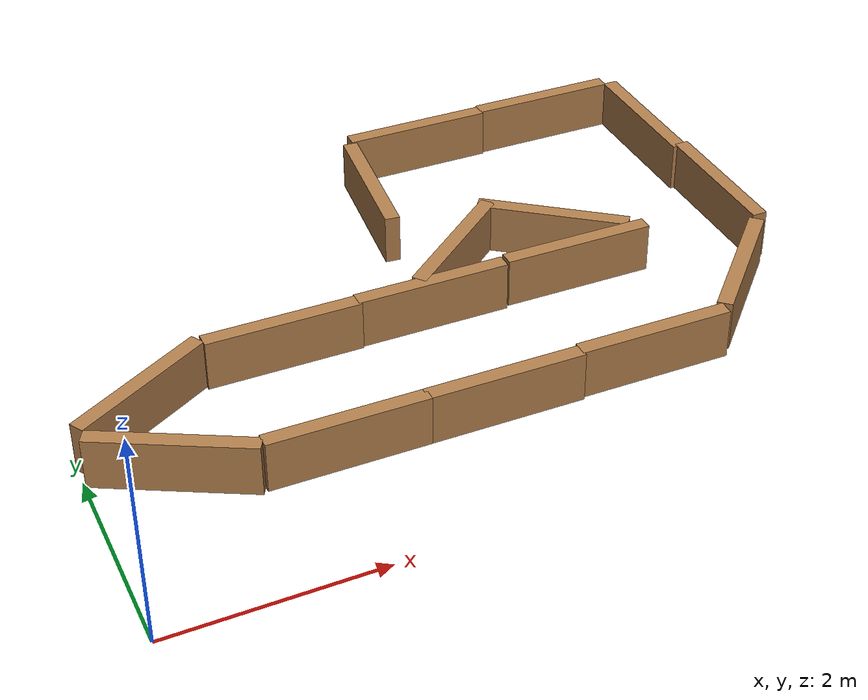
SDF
<?xml version='1.0'?>
<sdf version='1.6'>
  <model name='final_project_zone_final'>
    <link name='Wall_4'>
      <pose frame=''>0.711293 1.64851 0 0 -0 2.64859</pose>
      <inertial>
        <inertia>
          <ixx>0</ixx>
          <ixy>0</ixy>
          <ixz>0</ixz>
          <iyy>0</iyy>
          <iyz>0</iyz>
          <izz>0</izz>
        </inertia>
        <mass>0</mass>
        <pose frame=''>0 0 0 0 -0 0</pose>
      </inertial>
      <self_collide>0</self_collide>
      <kinematic>0</kinematic>
      <visual name='Wall_4_Visual'>
        <pose frame=''>0 0 0.25 0 -0 0</pose>
        <geometry>
          <box>
            <size>1.51038 0.15 0.5</size>
          </box>
        </geometry>
        <material>
          <script>
            <uri>file://media/materials/scripts/gazebo.material</uri>
            <name>Gazebo/Wood</name>
          </script>
          <ambient>1 1 1 1</ambient>
          <diffuse>1 1 1 1</diffuse>
          <specular>0.2 0.2 0.2 1</specular>
          <emissive>0 0 0 1</emissive>
          <shader type='pixel'>
            <normal_map>__default__</normal_map>
          </shader>
        </material>
        <cast_shadows>1</cast_shadows>
        <transparency>0</transparency>
      </visual>
      <collision name='Wall_4_Collision'>
        <laser_retro>0</laser_retro>
        <max_contacts>10</max_contacts>
        <pose frame=''>0 0 0.25 0 -0 0</pose>
        <geometry>
          <box>
            <size>1.51038 0.15 0.5</size>
          </box>
        </geometry>
        <surface>
          <friction>
            <ode>
              <mu>1</mu>
              <mu2>1</mu2>
              <fdir1>0 0 0</fdir1>
              <slip1>0</slip1>
              <slip2>0</slip2>
            </ode>
            <torsional>
              <coefficient>1</coefficient>
              <patch_radius>0</patch_radius>
              <surface_radius>0</surface_radius>
              <use_patch_radius>1</use_patch_radius>
              <ode>
                <slip>0</slip>
              </ode>
            </torsional>
          </friction>
          <bounce>
            <restitution_coefficient>0</restitution_coefficient>
            <threshold>1e+06</threshold>
          </bounce>
          <contact>
            <collide_without_contact>0</collide_without_contact>
            <collide_without_contact_bitmask>1</collide_without_contact_bitmask>
            <collide_bitmask>1</collide_bitmask>
            <ode>
              <soft_cfm>0</soft_cfm>
              <soft_erp>0.2</soft_erp>
              <kp>1e+13</kp>
              <kd>1</kd>
              <max_vel>0.01</max_vel>
              <min_depth>0</min_depth>
            </ode>
            <bullet>
              <split_impulse>1</split_impulse>
              <split_impulse_penetration_threshold>-0.01</split_impulse_penetration_threshold>
              <soft_cfm>0</soft_cfm>
              <soft_erp>0.2</soft_erp>
              <kp>1e+13</kp>
              <kd>1</kd>
            </bullet>
          </contact>
        </surface>
      </collision>
    </link>
    <link name='Wall_4_clone'>
      <pose frame=''>5.18012 3.43794 0 0 -0 2.48633</pose>
      <inertial>
        <inertia>
          <ixx>0</ixx>
          <ixy>0</ixy>
          <ixz>0</ixz>
          <iyy>0</iyy>
          <iyz>0</iyz>
          <izz>0</izz>
        </inertia>
        <mass>0</mass>
        <pose frame=''>0 0 0 0 -0 0</pose>
      </inertial>
      <self_collide>0</self_collide>
      <kinematic>0</kinematic>
      <visual name='Wall_4_Visual'>
        <pose frame=''>0 0 0.25 0 -0 0</pose>
        <geometry>
          <box>
            <size>1.51038 0.15 0.5</size>
          </box>
        </geometry>
        <material>
          <script>
            <uri>file://media/materials/scripts/gazebo.material</uri>
            <name>Gazebo/Wood</name>
          </script>
          <ambient>1 1 1 1</ambient>
          <diffuse>1 1 1 1</diffuse>
          <specular>0.2 0.2 0.2 1</specular>
          <emissive>0 0 0 1</emissive>
          <shader type='pixel'>
            <normal_map>__default__</normal_map>
          </shader>
        </material>
        <cast_shadows>1</cast_shadows>
        <transparency>0</transparency>
      </visual>
      <collision name='Wall_4_Collision'>
        <laser_retro>0</laser_retro>
        <max_contacts>10</max_contacts>
        <pose frame=''>0 0 0.25 0 -0 0</pose>
        <geometry>
          <box>
            <size>1.51038 0.15 0.5</size>
          </box>
        </geometry>
        <surface>
          <friction>
            <ode>
              <mu>1</mu>
              <mu2>1</mu2>
              <fdir1>0 0 0</fdir1>
              <slip1>0</slip1>
              <slip2>0</slip2>
            </ode>
            <torsional>
              <coefficient>1</coefficient>
              <patch_radius>0</patch_radius>
              <surface_radius>0</surface_radius>
              <use_patch_radius>1</use_patch_radius>
              <ode>
                <slip>0</slip>
              </ode>
            </torsional>
          </friction>
          <bounce>
            <restitution_coefficient>0</restitution_coefficient>
            <threshold>1e+06</threshold>
          </bounce>
          <contact>
            <collide_without_contact>0</collide_without_contact>
            <collide_without_contact_bitmask>1</collide_without_contact_bitmask>
            <collide_bitmask>1</collide_bitmask>
            <ode>
              <soft_cfm>0</soft_cfm>
              <soft_erp>0.2</soft_erp>
              <kp>1e+13</kp>
              <kd>1</kd>
              <max_vel>0.01</max_vel>
              <min_depth>0</min_depth>
            </ode>
            <bullet>
              <split_impulse>1</split_impulse>
              <split_impulse_penetration_threshold>-0.01</split_impulse_penetration_threshold>
              <soft_cfm>0</soft_cfm>
              <soft_erp>0.2</soft_erp>
              <kp>1e+13</kp>
              <kd>1</kd>
            </bullet>
          </contact>
        </surface>
      </collision>
    </link>
    <link name='Wall_4_clone_0'>
      <pose frame=''>0.690233 2.50756 0 0 0 -2.61959</pose>
      <inertial>
        <inertia>
          <ixx>0</ixx>
          <ixy>0</ixy>
          <ixz>0</ixz>
          <iyy>0</iyy>
          <iyz>0</iyz>
          <izz>0</izz>
        </inertia>
        <mass>0</mass>
        <pose frame=''>0 0 0 0 -0 0</pose>
      </inertial>
      <self_collide>0</self_collide>
      <kinematic>0</kinematic>
      <visual name='Wall_4_Visual'>
        <pose frame=''>0 0 0.25 0 -0 0</pose>
        <geometry>
          <box>
            <size>1.51038 0.15 0.5</size>
          </box>
        </geometry>
        <material>
          <script>
            <uri>file://media/materials/scripts/gazebo.material</uri>
            <name>Gazebo/Wood</name>
          </script>
          <ambient>1 1 1 1</ambient>
          <diffuse>1 1 1 1</diffuse>
          <specular>0.2 0.2 0.2 1</specular>
          <emissive>0 0 0 1</emissive>
          <shader type='pixel'>
            <normal_map>__default__</normal_map>
          </shader>
        </material>
        <cast_shadows>1</cast_shadows>
        <transparency>0</transparency>
      </visual>
      <collision name='Wall_4_Collision'>
        <laser_retro>0</laser_retro>
        <max_contacts>10</max_contacts>
        <pose frame=''>0 0 0.25 0 -0 0</pose>
        <geometry>
          <box>
            <size>1.51038 0.15 0.5</size>
          </box>
        </geometry>
        <surface>
          <friction>
            <ode>
              <mu>1</mu>
              <mu2>1</mu2>
              <fdir1>0 0 0</fdir1>
              <slip1>0</slip1>
              <slip2>0</slip2>
            </ode>
            <torsional>
              <coefficient>1</coefficient>
              <patch_radius>0</patch_radius>
              <surface_radius>0</surface_radius>
              <use_patch_radius>1</use_patch_radius>
              <ode>
                <slip>0</slip>
              </ode>
            </torsional>
          </friction>
          <bounce>
            <restitution_coefficient>0</restitution_coefficient>
            <threshold>1e+06</threshold>
          </bounce>
          <contact>
            <collide_without_contact>0</collide_without_contact>
            <collide_without_contact_bitmask>1</collide_without_contact_bitmask>
            <collide_bitmask>1</collide_bitmask>
            <ode>
              <soft_cfm>0</soft_cfm>
              <soft_erp>0.2</soft_erp>
              <kp>1e+13</kp>
              <kd>1</kd>
              <max_vel>0.01</max_vel>
              <min_depth>0</min_depth>
            </ode>
            <bullet>
              <split_impulse>1</split_impulse>
              <split_impulse_penetration_threshold>-0.01</split_impulse_penetration_threshold>
              <soft_cfm>0</soft_cfm>
              <soft_erp>0.2</soft_erp>
              <kp>1e+13</kp>
              <kd>1</kd>
            </bullet>
          </contact>
        </surface>
      </collision>
    </link>
    <link name='Wall_4_clone_0_clone'>
      <pose frame=''>6.41204 1.93908 0 0 0 -2.33156</pose>
      <inertial>
        <inertia>
          <ixx>0</ixx>
          <ixy>0</ixy>
          <ixz>0</ixz>
          <iyy>0</iyy>
          <iyz>0</iyz>
          <izz>0</izz>
        </inertia>
        <mass>0</mass>
        <pose frame=''>0 0 0 0 -0 0</pose>
      </inertial>
      <self_collide>0</self_collide>
      <kinematic>0</kinematic>
      <visual name='Wall_4_Visual'>
        <pose frame=''>0 0 0.25 0 -0 0</pose>
        <geometry>
          <box>
            <size>1.51038 0.15 0.5</size>
          </box>
        </geometry>
        <material>
          <script>
            <uri>file://media/materials/scripts/gazebo.material</uri>
            <name>Gazebo/Wood</name>
          </script>
          <ambient>1 1 1 1</ambient>
          <diffuse>1 1 1 1</diffuse>
          <specular>0.2 0.2 0.2 1</specular>
          <emissive>0 0 0 1</emissive>
          <shader type='pixel'>
            <normal_map>__default__</normal_map>
          </shader>
        </material>
        <cast_shadows>1</cast_shadows>
        <transparency>0</transparency>
      </visual>
      <collision name='Wall_4_Collision'>
        <laser_retro>0</laser_retro>
        <max_contacts>10</max_contacts>
        <pose frame=''>0 0 0.25 0 -0 0</pose>
        <geometry>
          <box>
            <size>1.51038 0.15 0.5</size>
          </box>
        </geometry>
        <surface>
          <friction>
            <ode>
              <mu>1</mu>
              <mu2>1</mu2>
              <fdir1>0 0 0</fdir1>
              <slip1>0</slip1>
              <slip2>0</slip2>
            </ode>
            <torsional>
              <coefficient>1</coefficient>
              <patch_radius>0</patch_radius>
              <surface_radius>0</surface_radius>
              <use_patch_radius>1</use_patch_radius>
              <ode>
                <slip>0</slip>
              </ode>
            </torsional>
          </friction>
          <bounce>
            <restitution_coefficient>0</restitution_coefficient>
            <threshold>1e+06</threshold>
          </bounce>
          <contact>
            <collide_without_contact>0</collide_without_contact>
            <collide_without_contact_bitmask>1</collide_without_contact_bitmask>
            <collide_bitmask>1</collide_bitmask>
            <ode>
              <soft_cfm>0</soft_cfm>
              <soft_erp>0.2</soft_erp>
              <kp>1e+13</kp>
              <kd>1</kd>
              <max_vel>0.01</max_vel>
              <min_depth>0</min_depth>
            </ode>
            <bullet>
              <split_impulse>1</split_impulse>
              <split_impulse_penetration_threshold>-0.01</split_impulse_penetration_threshold>
              <soft_cfm>0</soft_cfm>
              <soft_erp>0.2</soft_erp>
              <kp>1e+13</kp>
              <kd>1</kd>
            </bullet>
          </contact>
        </surface>
      </collision>
    </link>
    <link name='Wall_4_clone_0_clone_0'>
      <pose frame=''>4.09436 3.39143 0 0 0 -2.45903</pose>
      <inertial>
        <inertia>
          <ixx>0</ixx>
          <ixy>0</ixy>
          <ixz>0</ixz>
          <iyy>0</iyy>
          <iyz>0</iyz>
          <izz>0</izz>
        </inertia>
        <mass>0</mass>
        <pose frame=''>0 0 0 0 -0 0</pose>
      </inertial>
      <self_collide>0</self_collide>
      <kinematic>0</kinematic>
      <visual name='Wall_4_Visual'>
        <pose frame=''>0 0 0.25 0 -0 0</pose>
        <geometry>
          <box>
            <size>1.51038 0.15 0.5</size>
          </box>
        </geometry>
        <material>
          <script>
            <uri>file://media/materials/scripts/gazebo.material</uri>
            <name>Gazebo/Wood</name>
          </script>
          <ambient>1 1 1 1</ambient>
          <diffuse>1 1 1 1</diffuse>
          <specular>0.2 0.2 0.2 1</specular>
          <emissive>0 0 0 1</emissive>
          <shader type='pixel'>
            <normal_map>__default__</normal_map>
          </shader>
        </material>
        <cast_shadows>1</cast_shadows>
        <transparency>0</transparency>
      </visual>
      <collision name='Wall_4_Collision'>
        <laser_retro>0</laser_retro>
        <max_contacts>10</max_contacts>
        <pose frame=''>0 0 0.25 0 -0 0</pose>
        <geometry>
          <box>
            <size>1.51038 0.15 0.5</size>
          </box>
        </geometry>
        <surface>
          <friction>
            <ode>
              <mu>1</mu>
              <mu2>1</mu2>
              <fdir1>0 0 0</fdir1>
              <slip1>0</slip1>
              <slip2>0</slip2>
            </ode>
            <torsional>
              <coefficient>1</coefficient>
              <patch_radius>0</patch_radius>
              <surface_radius>0</surface_radius>
              <use_patch_radius>1</use_patch_radius>
              <ode>
                <slip>0</slip>
              </ode>
            </torsional>
          </friction>
          <bounce>
            <restitution_coefficient>0</restitution_coefficient>
            <threshold>1e+06</threshold>
          </bounce>
          <contact>
            <collide_without_contact>0</collide_without_contact>
            <collide_without_contact_bitmask>1</collide_without_contact_bitmask>
            <collide_bitmask>1</collide_bitmask>
            <ode>
              <soft_cfm>0</soft_cfm>
              <soft_erp>0.2</soft_erp>
              <kp>1e+13</kp>
              <kd>1</kd>
              <max_vel>0.01</max_vel>
              <min_depth>0</min_depth>
            </ode>
            <bullet>
              <split_impulse>1</split_impulse>
              <split_impulse_penetration_threshold>-0.01</split_impulse_penetration_threshold>
              <soft_cfm>0</soft_cfm>
              <soft_erp>0.2</soft_erp>
              <kp>1e+13</kp>
              <kd>1</kd>
            </bullet>
          </contact>
        </surface>
      </collision>
    </link>
    <link name='Wall_4_clone_1'>
      <pose frame=''>2.14061 1.32017 0 0 0 -0.004193</pose>
      <inertial>
        <inertia>
          <ixx>0</ixx>
          <ixy>0</ixy>
          <ixz>0</ixz>
          <iyy>0</iyy>
          <iyz>0</iyz>
          <izz>0</izz>
        </inertia>
        <mass>0</mass>
        <pose frame=''>0 0 0 0 -0 0</pose>
      </inertial>
      <self_collide>0</self_collide>
      <kinematic>0</kinematic>
      <visual name='Wall_4_Visual'>
        <pose frame=''>0 0 0.25 0 -0 0</pose>
        <geometry>
          <box>
            <size>1.51038 0.15 0.5</size>
          </box>
        </geometry>
        <material>
          <script>
            <uri>file://media/materials/scripts/gazebo.material</uri>
            <name>Gazebo/Wood</name>
          </script>
          <ambient>1 1 1 1</ambient>
          <diffuse>1 1 1 1</diffuse>
          <specular>0.2 0.2 0.2 1</specular>
          <emissive>0 0 0 1</emissive>
          <shader type='pixel'>
            <normal_map>__default__</normal_map>
          </shader>
        </material>
        <cast_shadows>1</cast_shadows>
        <transparency>0</transparency>
      </visual>
      <collision name='Wall_4_Collision'>
        <laser_retro>0</laser_retro>
        <max_contacts>10</max_contacts>
        <pose frame=''>0 0 0.25 0 -0 0</pose>
        <geometry>
          <box>
            <size>1.51038 0.15 0.5</size>
          </box>
        </geometry>
        <surface>
          <friction>
            <ode>
              <mu>1</mu>
              <mu2>1</mu2>
              <fdir1>0 0 0</fdir1>
              <slip1>0</slip1>
              <slip2>0</slip2>
            </ode>
            <torsional>
              <coefficient>1</coefficient>
              <patch_radius>0</patch_radius>
              <surface_radius>0</surface_radius>
              <use_patch_radius>1</use_patch_radius>
              <ode>
                <slip>0</slip>
              </ode>
            </torsional>
          </friction>
          <bounce>
            <restitution_coefficient>0</restitution_coefficient>
            <threshold>1e+06</threshold>
          </bounce>
          <contact>
            <collide_without_contact>0</collide_without_contact>
            <collide_without_contact_bitmask>1</collide_without_contact_bitmask>
            <collide_bitmask>1</collide_bitmask>
            <ode>
              <soft_cfm>0</soft_cfm>
              <soft_erp>0.2</soft_erp>
              <kp>1e+13</kp>
              <kd>1</kd>
              <max_vel>0.01</max_vel>
              <min_depth>0</min_depth>
            </ode>
            <bullet>
              <split_impulse>1</split_impulse>
              <split_impulse_penetration_threshold>-0.01</split_impulse_penetration_threshold>
              <soft_cfm>0</soft_cfm>
              <soft_erp>0.2</soft_erp>
              <kp>1e+13</kp>
              <kd>1</kd>
            </bullet>
          </contact>
        </surface>
      </collision>
    </link>
    <link name='Wall_4_clone_1_clone'>
      <pose frame=''>5.11683 1.33715 0 0 0 -0.004193</pose>
      <inertial>
        <inertia>
          <ixx>0</ixx>
          <ixy>0</ixy>
          <ixz>0</ixz>
          <iyy>0</iyy>
          <iyz>0</iyz>
          <izz>0</izz>
        </inertia>
        <mass>0</mass>
        <pose frame=''>0 0 0 0 -0 0</pose>
      </inertial>
      <self_collide>0</self_collide>
      <kinematic>0</kinematic>
      <visual name='Wall_4_Visual'>
        <pose frame=''>0 0 0.25 0 -0 0</pose>
        <geometry>
          <box>
            <size>1.51038 0.15 0.5</size>
          </box>
        </geometry>
        <material>
          <script>
            <uri>file://media/materials/scripts/gazebo.material</uri>
            <name>Gazebo/Wood</name>
          </script>
          <ambient>1 1 1 1</ambient>
          <diffuse>1 1 1 1</diffuse>
          <specular>0.2 0.2 0.2 1</specular>
          <emissive>0 0 0 1</emissive>
          <shader type='pixel'>
            <normal_map>__default__</normal_map>
          </shader>
        </material>
        <cast_shadows>1</cast_shadows>
        <transparency>0</transparency>
      </visual>
      <collision name='Wall_4_Collision'>
        <laser_retro>0</laser_retro>
        <max_contacts>10</max_contacts>
        <pose frame=''>0 0 0.25 0 -0 0</pose>
        <geometry>
          <box>
            <size>1.51038 0.15 0.5</size>
          </box>
        </geometry>
        <surface>
          <friction>
            <ode>
              <mu>1</mu>
              <mu2>1</mu2>
              <fdir1>0 0 0</fdir1>
              <slip1>0</slip1>
              <slip2>0</slip2>
            </ode>
            <torsional>
              <coefficient>1</coefficient>
              <patch_radius>0</patch_radius>
              <surface_radius>0</surface_radius>
              <use_patch_radius>1</use_patch_radius>
              <ode>
                <slip>0</slip>
              </ode>
            </torsional>
          </friction>
          <bounce>
            <restitution_coefficient>0</restitution_coefficient>
            <threshold>1e+06</threshold>
          </bounce>
          <contact>
            <collide_without_contact>0</collide_without_contact>
            <collide_without_contact_bitmask>1</collide_without_contact_bitmask>
            <collide_bitmask>1</collide_bitmask>
            <ode>
              <soft_cfm>0</soft_cfm>
              <soft_erp>0.2</soft_erp>
              <kp>1e+13</kp>
              <kd>1</kd>
              <max_vel>0.01</max_vel>
              <min_depth>0</min_depth>
            </ode>
            <bullet>
              <split_impulse>1</split_impulse>
              <split_impulse_penetration_threshold>-0.01</split_impulse_penetration_threshold>
              <soft_cfm>0</soft_cfm>
              <soft_erp>0.2</soft_erp>
              <kp>1e+13</kp>
              <kd>1</kd>
            </bullet>
          </contact>
        </surface>
      </collision>
    </link>
    <link name='Wall_4_clone_1_clone_0'>
      <pose frame=''>3.62102 1.31595 0 0 0 -0.004193</pose>
      <inertial>
        <inertia>
          <ixx>0</ixx>
          <ixy>0</ixy>
          <ixz>0</ixz>
          <iyy>0</iyy>
          <iyz>0</iyz>
          <izz>0</izz>
        </inertia>
        <mass>0</mass>
        <pose frame=''>0 0 0 0 -0 0</pose>
      </inertial>
      <self_collide>0</self_collide>
      <kinematic>0</kinematic>
      <visual name='Wall_4_Visual'>
        <pose frame=''>0 0 0.25 0 -0 0</pose>
        <geometry>
          <box>
            <size>1.51038 0.15 0.5</size>
          </box>
        </geometry>
        <material>
          <script>
            <uri>file://media/materials/scripts/gazebo.material</uri>
            <name>Gazebo/Wood</name>
          </script>
          <ambient>1 1 1 1</ambient>
          <diffuse>1 1 1 1</diffuse>
          <specular>0.2 0.2 0.2 1</specular>
          <emissive>0 0 0 1</emissive>
          <shader type='pixel'>
            <normal_map>__default__</normal_map>
          </shader>
        </material>
        <cast_shadows>1</cast_shadows>
        <transparency>0</transparency>
      </visual>
      <collision name='Wall_4_Collision'>
        <laser_retro>0</laser_retro>
        <max_contacts>10</max_contacts>
        <pose frame=''>0 0 0.25 0 -0 0</pose>
        <geometry>
          <box>
            <size>1.51038 0.15 0.5</size>
          </box>
        </geometry>
        <surface>
          <friction>
            <ode>
              <mu>1</mu>
              <mu2>1</mu2>
              <fdir1>0 0 0</fdir1>
              <slip1>0</slip1>
              <slip2>0</slip2>
            </ode>
            <torsional>
              <coefficient>1</coefficient>
              <patch_radius>0</patch_radius>
              <surface_radius>0</surface_radius>
              <use_patch_radius>1</use_patch_radius>
              <ode>
                <slip>0</slip>
              </ode>
            </torsional>
          </friction>
          <bounce>
            <restitution_coefficient>0</restitution_coefficient>
            <threshold>1e+06</threshold>
          </bounce>
          <contact>
            <collide_without_contact>0</collide_without_contact>
            <collide_without_contact_bitmask>1</collide_without_contact_bitmask>
            <collide_bitmask>1</collide_bitmask>
            <ode>
              <soft_cfm>0</soft_cfm>
              <soft_erp>0.2</soft_erp>
              <kp>1e+13</kp>
              <kd>1</kd>
              <max_vel>0.01</max_vel>
              <min_depth>0</min_depth>
            </ode>
            <bullet>
              <split_impulse>1</split_impulse>
              <split_impulse_penetration_threshold>-0.01</split_impulse_penetration_threshold>
              <soft_cfm>0</soft_cfm>
              <soft_erp>0.2</soft_erp>
              <kp>1e+13</kp>
              <kd>1</kd>
            </bullet>
          </contact>
        </surface>
      </collision>
    </link>
    <link name='Wall_4_clone_1_clone_1'>
      <pose frame=''>2.12657 2.84824 0 0 0 -0.004193</pose>
      <inertial>
        <inertia>
          <ixx>0</ixx>
          <ixy>0</ixy>
          <ixz>0</ixz>
          <iyy>0</iyy>
          <iyz>0</iyz>
          <izz>0</izz>
        </inertia>
        <mass>0</mass>
        <pose frame=''>0 0 0 0 -0 0</pose>
      </inertial>
      <self_collide>0</self_collide>
      <kinematic>0</kinematic>
      <visual name='Wall_4_Visual'>
        <pose frame=''>0 0 0.25 0 -0 0</pose>
        <geometry>
          <box>
            <size>1.51038 0.15 0.5</size>
          </box>
        </geometry>
        <material>
          <script>
            <uri>file://media/materials/scripts/gazebo.material</uri>
            <name>Gazebo/Wood</name>
          </script>
          <ambient>1 1 1 1</ambient>
          <diffuse>1 1 1 1</diffuse>
          <specular>0.2 0.2 0.2 1</specular>
          <emissive>0 0 0 1</emissive>
          <shader type='pixel'>
            <normal_map>__default__</normal_map>
          </shader>
        </material>
        <cast_shadows>1</cast_shadows>
        <transparency>0</transparency>
      </visual>
      <collision name='Wall_4_Collision'>
        <laser_retro>0</laser_retro>
        <max_contacts>10</max_contacts>
        <pose frame=''>0 0 0.25 0 -0 0</pose>
        <geometry>
          <box>
            <size>1.51038 0.15 0.5</size>
          </box>
        </geometry>
        <surface>
          <friction>
            <ode>
              <mu>1</mu>
              <mu2>1</mu2>
              <fdir1>0 0 0</fdir1>
              <slip1>0</slip1>
              <slip2>0</slip2>
            </ode>
            <torsional>
              <coefficient>1</coefficient>
              <patch_radius>0</patch_radius>
              <surface_radius>0</surface_radius>
              <use_patch_radius>1</use_patch_radius>
              <ode>
                <slip>0</slip>
              </ode>
            </torsional>
          </friction>
          <bounce>
            <restitution_coefficient>0</restitution_coefficient>
            <threshold>1e+06</threshold>
          </bounce>
          <contact>
            <collide_without_contact>0</collide_without_contact>
            <collide_without_contact_bitmask>1</collide_without_contact_bitmask>
            <collide_bitmask>1</collide_bitmask>
            <ode>
              <soft_cfm>0</soft_cfm>
              <soft_erp>0.2</soft_erp>
              <kp>1e+13</kp>
              <kd>1</kd>
              <max_vel>0.01</max_vel>
              <min_depth>0</min_depth>
            </ode>
            <bullet>
              <split_impulse>1</split_impulse>
              <split_impulse_penetration_threshold>-0.01</split_impulse_penetration_threshold>
              <soft_cfm>0</soft_cfm>
              <soft_erp>0.2</soft_erp>
              <kp>1e+13</kp>
              <kd>1</kd>
            </bullet>
          </contact>
        </surface>
      </collision>
    </link>
    <link name='Wall_4_clone_1_clone_2'>
      <pose frame=''>5.15165 2.88569 0 0 0 -0.004193</pose>
      <inertial>
        <inertia>
          <ixx>0</ixx>
          <ixy>0</ixy>
          <ixz>0</ixz>
          <iyy>0</iyy>
          <iyz>0</iyz>
          <izz>0</izz>
        </inertia>
        <mass>0</mass>
        <pose frame=''>0 0 0 0 -0 0</pose>
      </inertial>
      <self_collide>0</self_collide>
      <kinematic>0</kinematic>
      <visual name='Wall_4_Visual'>
        <pose frame=''>0 0 0.25 0 -0 0</pose>
        <geometry>
          <box>
            <size>1.51038 0.15 0.5</size>
          </box>
        </geometry>
        <material>
          <script>
            <uri>file://media/materials/scripts/gazebo.material</uri>
            <name>Gazebo/Wood</name>
          </script>
          <ambient>1 1 1 1</ambient>
          <diffuse>1 1 1 1</diffuse>
          <specular>0.2 0.2 0.2 1</specular>
          <emissive>0 0 0 1</emissive>
          <shader type='pixel'>
            <normal_map>__default__</normal_map>
          </shader>
        </material>
        <cast_shadows>1</cast_shadows>
        <transparency>0</transparency>
      </visual>
      <collision name='Wall_4_Collision'>
        <laser_retro>0</laser_retro>
        <max_contacts>10</max_contacts>
        <pose frame=''>0 0 0.25 0 -0 0</pose>
        <geometry>
          <box>
            <size>1.51038 0.15 0.5</size>
          </box>
        </geometry>
        <surface>
          <friction>
            <ode>
              <mu>1</mu>
              <mu2>1</mu2>
              <fdir1>0 0 0</fdir1>
              <slip1>0</slip1>
              <slip2>0</slip2>
            </ode>
            <torsional>
              <coefficient>1</coefficient>
              <patch_radius>0</patch_radius>
              <surface_radius>0</surface_radius>
              <use_patch_radius>1</use_patch_radius>
              <ode>
                <slip>0</slip>
              </ode>
            </torsional>
          </friction>
          <bounce>
            <restitution_coefficient>0</restitution_coefficient>
            <threshold>1e+06</threshold>
          </bounce>
          <contact>
            <collide_without_contact>0</collide_without_contact>
            <collide_without_contact_bitmask>1</collide_without_contact_bitmask>
            <collide_bitmask>1</collide_bitmask>
            <ode>
              <soft_cfm>0</soft_cfm>
              <soft_erp>0.2</soft_erp>
              <kp>1e+13</kp>
              <kd>1</kd>
              <max_vel>0.01</max_vel>
              <min_depth>0</min_depth>
            </ode>
            <bullet>
              <split_impulse>1</split_impulse>
              <split_impulse_penetration_threshold>-0.01</split_impulse_penetration_threshold>
              <soft_cfm>0</soft_cfm>
              <soft_erp>0.2</soft_erp>
              <kp>1e+13</kp>
              <kd>1</kd>
            </bullet>
          </contact>
        </surface>
      </collision>
    </link>
    <link name='Wall_4_clone_1_clone_3'>
      <pose frame=''>3.61124 2.86106 0 0 0 -0.004193</pose>
      <inertial>
        <inertia>
          <ixx>0</ixx>
          <ixy>0</ixy>
          <ixz>0</ixz>
          <iyy>0</iyy>
          <iyz>0</iyz>
          <izz>0</izz>
        </inertia>
        <mass>0</mass>
        <pose frame=''>0 0 0 0 -0 0</pose>
      </inertial>
      <self_collide>0</self_collide>
      <kinematic>0</kinematic>
      <visual name='Wall_4_Visual'>
        <pose frame=''>0 0 0.25 0 -0 0</pose>
        <geometry>
          <box>
            <size>1.51038 0.15 0.5</size>
          </box>
        </geometry>
        <material>
          <script>
            <uri>file://media/materials/scripts/gazebo.material</uri>
            <name>Gazebo/Wood</name>
          </script>
          <ambient>1 1 1 1</ambient>
          <diffuse>1 1 1 1</diffuse>
          <specular>0.2 0.2 0.2 1</specular>
          <emissive>0 0 0 1</emissive>
          <shader type='pixel'>
            <normal_map>__default__</normal_map>
          </shader>
        </material>
        <cast_shadows>1</cast_shadows>
        <transparency>0</transparency>
      </visual>
      <collision name='Wall_4_Collision'>
        <laser_retro>0</laser_retro>
        <max_contacts>10</max_contacts>
        <pose frame=''>0 0 0.25 0 -0 0</pose>
        <geometry>
          <box>
            <size>1.51038 0.15 0.5</size>
          </box>
        </geometry>
        <surface>
          <friction>
            <ode>
              <mu>1</mu>
              <mu2>1</mu2>
              <fdir1>0 0 0</fdir1>
              <slip1>0</slip1>
              <slip2>0</slip2>
            </ode>
            <torsional>
              <coefficient>1</coefficient>
              <patch_radius>0</patch_radius>
              <surface_radius>0</surface_radius>
              <use_patch_radius>1</use_patch_radius>
              <ode>
                <slip>0</slip>
              </ode>
            </torsional>
          </friction>
          <bounce>
            <restitution_coefficient>0</restitution_coefficient>
            <threshold>1e+06</threshold>
          </bounce>
          <contact>
            <collide_without_contact>0</collide_without_contact>
            <collide_without_contact_bitmask>1</collide_without_contact_bitmask>
            <collide_bitmask>1</collide_bitmask>
            <ode>
              <soft_cfm>0</soft_cfm>
              <soft_erp>0.2</soft_erp>
              <kp>1e+13</kp>
              <kd>1</kd>
              <max_vel>0.01</max_vel>
              <min_depth>0</min_depth>
            </ode>
            <bullet>
              <split_impulse>1</split_impulse>
              <split_impulse_penetration_threshold>-0.01</split_impulse_penetration_threshold>
              <soft_cfm>0</soft_cfm>
              <soft_erp>0.2</soft_erp>
              <kp>1e+13</kp>
              <kd>1</kd>
            </bullet>
          </contact>
        </surface>
      </collision>
    </link>
    <link name='Wall_4_clone_1_clone_3_clone'>
      <pose frame=''>6.14633 5.58513 0 0 0 -0.004193</pose>
      <inertial>
        <inertia>
          <ixx>0</ixx>
          <ixy>0</ixy>
          <ixz>0</ixz>
          <iyy>0</iyy>
          <iyz>0</iyz>
          <izz>0</izz>
        </inertia>
        <mass>0</mass>
        <pose frame=''>0 0 0 0 -0 0</pose>
      </inertial>
      <self_collide>0</self_collide>
      <kinematic>0</kinematic>
      <visual name='Wall_4_Visual'>
        <pose frame=''>0 0 0.25 0 -0 0</pose>
        <geometry>
          <box>
            <size>1.51038 0.15 0.5</size>
          </box>
        </geometry>
        <material>
          <script>
            <uri>file://media/materials/scripts/gazebo.material</uri>
            <name>Gazebo/Wood</name>
          </script>
          <ambient>1 1 1 1</ambient>
          <diffuse>1 1 1 1</diffuse>
          <specular>0.2 0.2 0.2 1</specular>
          <emissive>0 0 0 1</emissive>
          <shader type='pixel'>
            <normal_map>__default__</normal_map>
          </shader>
        </material>
        <cast_shadows>1</cast_shadows>
        <transparency>0</transparency>
      </visual>
      <collision name='Wall_4_Collision'>
        <laser_retro>0</laser_retro>
        <max_contacts>10</max_contacts>
        <pose frame=''>0 0 0.25 0 -0 0</pose>
        <geometry>
          <box>
            <size>1.51038 0.15 0.5</size>
          </box>
        </geometry>
        <surface>
          <friction>
            <ode>
              <mu>1</mu>
              <mu2>1</mu2>
              <fdir1>0 0 0</fdir1>
              <slip1>0</slip1>
              <slip2>0</slip2>
            </ode>
            <torsional>
              <coefficient>1</coefficient>
              <patch_radius>0</patch_radius>
              <surface_radius>0</surface_radius>
              <use_patch_radius>1</use_patch_radius>
              <ode>
                <slip>0</slip>
              </ode>
            </torsional>
          </friction>
          <bounce>
            <restitution_coefficient>0</restitution_coefficient>
            <threshold>1e+06</threshold>
          </bounce>
          <contact>
            <collide_without_contact>0</collide_without_contact>
            <collide_without_contact_bitmask>1</collide_without_contact_bitmask>
            <collide_bitmask>1</collide_bitmask>
            <ode>
              <soft_cfm>0</soft_cfm>
              <soft_erp>0.2</soft_erp>
              <kp>1e+13</kp>
              <kd>1</kd>
              <max_vel>0.01</max_vel>
              <min_depth>0</min_depth>
            </ode>
            <bullet>
              <split_impulse>1</split_impulse>
              <split_impulse_penetration_threshold>-0.01</split_impulse_penetration_threshold>
              <soft_cfm>0</soft_cfm>
              <soft_erp>0.2</soft_erp>
              <kp>1e+13</kp>
              <kd>1</kd>
            </bullet>
          </contact>
        </surface>
      </collision>
    </link>
    <link name='Wall_4_clone_1_clone_3_clone_0'>
      <pose frame=''>4.64508 5.5676 0 0 0 -0.004193</pose>
      <inertial>
        <inertia>
          <ixx>0</ixx>
          <ixy>0</ixy>
          <ixz>0</ixz>
          <iyy>0</iyy>
          <iyz>0</iyz>
          <izz>0</izz>
        </inertia>
        <mass>0</mass>
        <pose frame=''>0 0 0 0 -0 0</pose>
      </inertial>
      <self_collide>0</self_collide>
      <kinematic>0</kinematic>
      <visual name='Wall_4_Visual'>
        <pose frame=''>0 0 0.25 0 -0 0</pose>
        <geometry>
          <box>
            <size>1.51038 0.15 0.5</size>
          </box>
        </geometry>
        <material>
          <script>
            <uri>file://media/materials/scripts/gazebo.material</uri>
            <name>Gazebo/Wood</name>
          </script>
          <ambient>1 1 1 1</ambient>
          <diffuse>1 1 1 1</diffuse>
          <specular>0.2 0.2 0.2 1</specular>
          <emissive>0 0 0 1</emissive>
          <shader type='pixel'>
            <normal_map>__default__</normal_map>
          </shader>
        </material>
        <cast_shadows>1</cast_shadows>
        <transparency>0</transparency>
      </visual>
      <collision name='Wall_4_Collision'>
        <laser_retro>0</laser_retro>
        <max_contacts>10</max_contacts>
        <pose frame=''>0 0 0.25 0 -0 0</pose>
        <geometry>
          <box>
            <size>1.51038 0.15 0.5</size>
          </box>
        </geometry>
        <surface>
          <friction>
            <ode>
              <mu>1</mu>
              <mu2>1</mu2>
              <fdir1>0 0 0</fdir1>
              <slip1>0</slip1>
              <slip2>0</slip2>
            </ode>
            <torsional>
              <coefficient>1</coefficient>
              <patch_radius>0</patch_radius>
              <surface_radius>0</surface_radius>
              <use_patch_radius>1</use_patch_radius>
              <ode>
                <slip>0</slip>
              </ode>
            </torsional>
          </friction>
          <bounce>
            <restitution_coefficient>0</restitution_coefficient>
            <threshold>1e+06</threshold>
          </bounce>
          <contact>
            <collide_without_contact>0</collide_without_contact>
            <collide_without_contact_bitmask>1</collide_without_contact_bitmask>
            <collide_bitmask>1</collide_bitmask>
            <ode>
              <soft_cfm>0</soft_cfm>
              <soft_erp>0.2</soft_erp>
              <kp>1e+13</kp>
              <kd>1</kd>
              <max_vel>0.01</max_vel>
              <min_depth>0</min_depth>
            </ode>
            <bullet>
              <split_impulse>1</split_impulse>
              <split_impulse_penetration_threshold>-0.01</split_impulse_penetration_threshold>
              <soft_cfm>0</soft_cfm>
              <soft_erp>0.2</soft_erp>
              <kp>1e+13</kp>
              <kd>1</kd>
            </bullet>
          </contact>
        </surface>
      </collision>
    </link>
    <link name='Wall_4_clone_2_clone'>
      <pose frame=''>6.96474 4.76618 0 0 -0 1.5708</pose>
      <inertial>
        <inertia>
          <ixx>0</ixx>
          <ixy>0</ixy>
          <ixz>0</ixz>
          <iyy>0</iyy>
          <iyz>0</iyz>
          <izz>0</izz>
        </inertia>
        <mass>0</mass>
        <pose frame=''>0 0 0 0 -0 0</pose>
      </inertial>
      <self_collide>0</self_collide>
      <kinematic>0</kinematic>
      <visual name='Wall_4_Visual'>
        <pose frame=''>0 0 0.25 0 -0 0</pose>
        <geometry>
          <box>
            <size>1.51038 0.15 0.5</size>
          </box>
        </geometry>
        <material>
          <script>
            <uri>file://media/materials/scripts/gazebo.material</uri>
            <name>Gazebo/Wood</name>
          </script>
          <ambient>1 1 1 1</ambient>
          <diffuse>1 1 1 1</diffuse>
          <specular>0.2 0.2 0.2 1</specular>
          <emissive>0 0 0 1</emissive>
          <shader type='pixel'>
            <normal_map>__default__</normal_map>
          </shader>
        </material>
        <cast_shadows>1</cast_shadows>
        <transparency>0</transparency>
      </visual>
      <collision name='Wall_4_Collision'>
        <laser_retro>0</laser_retro>
        <max_contacts>10</max_contacts>
        <pose frame=''>0 0 0.25 0 -0 0</pose>
        <geometry>
          <box>
            <size>1.51038 0.15 0.5</size>
          </box>
        </geometry>
        <surface>
          <friction>
            <ode>
              <mu>1</mu>
              <mu2>1</mu2>
              <fdir1>0 0 0</fdir1>
              <slip1>0</slip1>
              <slip2>0</slip2>
            </ode>
            <torsional>
              <coefficient>1</coefficient>
              <patch_radius>0</patch_radius>
              <surface_radius>0</surface_radius>
              <use_patch_radius>1</use_patch_radius>
              <ode>
                <slip>0</slip>
              </ode>
            </torsional>
          </friction>
          <bounce>
            <restitution_coefficient>0</restitution_coefficient>
            <threshold>1e+06</threshold>
          </bounce>
          <contact>
            <collide_without_contact>0</collide_without_contact>
            <collide_without_contact_bitmask>1</collide_without_contact_bitmask>
            <collide_bitmask>1</collide_bitmask>
            <ode>
              <soft_cfm>0</soft_cfm>
              <soft_erp>0.2</soft_erp>
              <kp>1e+13</kp>
              <kd>1</kd>
              <max_vel>0.01</max_vel>
              <min_depth>0</min_depth>
            </ode>
            <bullet>
              <split_impulse>1</split_impulse>
              <split_impulse_penetration_threshold>-0.01</split_impulse_penetration_threshold>
              <soft_cfm>0</soft_cfm>
              <soft_erp>0.2</soft_erp>
              <kp>1e+13</kp>
              <kd>1</kd>
            </bullet>
          </contact>
        </surface>
      </collision>
    </link>
    <link name='Wall_4_clone_2_clone_0'>
      <pose frame=''>7.00784 3.30235 0 0 -0 1.5708</pose>
      <inertial>
        <inertia>
          <ixx>0</ixx>
          <ixy>0</ixy>
          <ixz>0</ixz>
          <iyy>0</iyy>
          <iyz>0</iyz>
          <izz>0</izz>
        </inertia>
        <mass>0</mass>
        <pose frame=''>0 0 0 0 -0 0</pose>
      </inertial>
      <self_collide>0</self_collide>
      <kinematic>0</kinematic>
      <visual name='Wall_4_Visual'>
        <pose frame=''>0 0 0.25 0 -0 0</pose>
        <geometry>
          <box>
            <size>1.51038 0.15 0.5</size>
          </box>
        </geometry>
        <material>
          <script>
            <uri>file://media/materials/scripts/gazebo.material</uri>
            <name>Gazebo/Wood</name>
          </script>
          <ambient>1 1 1 1</ambient>
          <diffuse>1 1 1 1</diffuse>
          <specular>0.2 0.2 0.2 1</specular>
          <emissive>0 0 0 1</emissive>
          <shader type='pixel'>
            <normal_map>__default__</normal_map>
          </shader>
        </material>
        <cast_shadows>1</cast_shadows>
        <transparency>0</transparency>
      </visual>
      <collision name='Wall_4_Collision'>
        <laser_retro>0</laser_retro>
        <max_contacts>10</max_contacts>
        <pose frame=''>0 0 0.25 0 -0 0</pose>
        <geometry>
          <box>
            <size>1.51038 0.15 0.5</size>
          </box>
        </geometry>
        <surface>
          <friction>
            <ode>
              <mu>1</mu>
              <mu2>1</mu2>
              <fdir1>0 0 0</fdir1>
              <slip1>0</slip1>
              <slip2>0</slip2>
            </ode>
            <torsional>
              <coefficient>1</coefficient>
              <patch_radius>0</patch_radius>
              <surface_radius>0</surface_radius>
              <use_patch_radius>1</use_patch_radius>
              <ode>
                <slip>0</slip>
              </ode>
            </torsional>
          </friction>
          <bounce>
            <restitution_coefficient>0</restitution_coefficient>
            <threshold>1e+06</threshold>
          </bounce>
          <contact>
            <collide_without_contact>0</collide_without_contact>
            <collide_without_contact_bitmask>1</collide_without_contact_bitmask>
            <collide_bitmask>1</collide_bitmask>
            <ode>
              <soft_cfm>0</soft_cfm>
              <soft_erp>0.2</soft_erp>
              <kp>1e+13</kp>
              <kd>1</kd>
              <max_vel>0.01</max_vel>
              <min_depth>0</min_depth>
            </ode>
            <bullet>
              <split_impulse>1</split_impulse>
              <split_impulse_penetration_threshold>-0.01</split_impulse_penetration_threshold>
              <soft_cfm>0</soft_cfm>
              <soft_erp>0.2</soft_erp>
              <kp>1e+13</kp>
              <kd>1</kd>
            </bullet>
          </contact>
        </surface>
      </collision>
    </link>
    <link name='Wall_4_clone_2_clone_2'>
      <pose frame=''>3.77611 4.73244 0 0 -0 1.46273</pose>
      <inertial>
        <inertia>
          <ixx>0</ixx>
          <ixy>0</ixy>
          <ixz>0</ixz>
          <iyy>0</iyy>
          <iyz>0</iyz>
          <izz>0</izz>
        </inertia>
        <mass>0</mass>
        <pose frame=''>0 0 0 0 -0 0</pose>
      </inertial>
      <self_collide>0</self_collide>
      <kinematic>0</kinematic>
      <visual name='Wall_4_Visual'>
        <pose frame=''>0 0 0.25 0 -0 0</pose>
        <geometry>
          <box>
            <size>1.51038 0.15 0.5</size>
          </box>
        </geometry>
        <material>
          <script>
            <uri>file://media/materials/scripts/gazebo.material</uri>
            <name>Gazebo/Wood</name>
          </script>
          <ambient>1 1 1 1</ambient>
          <diffuse>1 1 1 1</diffuse>
          <specular>0.2 0.2 0.2 1</specular>
          <emissive>0 0 0 1</emissive>
          <shader type='pixel'>
            <normal_map>__default__</normal_map>
          </shader>
        </material>
        <cast_shadows>1</cast_shadows>
        <transparency>0</transparency>
      </visual>
      <collision name='Wall_4_Collision'>
        <laser_retro>0</laser_retro>
        <max_contacts>10</max_contacts>
        <pose frame=''>0 0 0.25 0 -0 0</pose>
        <geometry>
          <box>
            <size>1.51038 0.15 0.5</size>
          </box>
        </geometry>
        <surface>
          <friction>
            <ode>
              <mu>1</mu>
              <mu2>1</mu2>
              <fdir1>0 0 0</fdir1>
              <slip1>0</slip1>
              <slip2>0</slip2>
            </ode>
            <torsional>
              <coefficient>1</coefficient>
              <patch_radius>0</patch_radius>
              <surface_radius>0</surface_radius>
              <use_patch_radius>1</use_patch_radius>
              <ode>
                <slip>0</slip>
              </ode>
            </torsional>
          </friction>
          <bounce>
            <restitution_coefficient>0</restitution_coefficient>
            <threshold>1e+06</threshold>
          </bounce>
          <contact>
            <collide_without_contact>0</collide_without_contact>
            <collide_without_contact_bitmask>1</collide_without_contact_bitmask>
            <collide_bitmask>1</collide_bitmask>
            <ode>
              <soft_cfm>0</soft_cfm>
              <soft_erp>0.2</soft_erp>
              <kp>1e+13</kp>
              <kd>1</kd>
              <max_vel>0.01</max_vel>
              <min_depth>0</min_depth>
            </ode>
            <bullet>
              <split_impulse>1</split_impulse>
              <split_impulse_penetration_threshold>-0.01</split_impulse_penetration_threshold>
              <soft_cfm>0</soft_cfm>
              <soft_erp>0.2</soft_erp>
              <kp>1e+13</kp>
              <kd>1</kd>
            </bullet>
          </contact>
        </surface>
      </collision>
    </link>
    <static>1</static>
    <allow_auto_disable>1</allow_auto_disable>
  </model>
</sdf>
